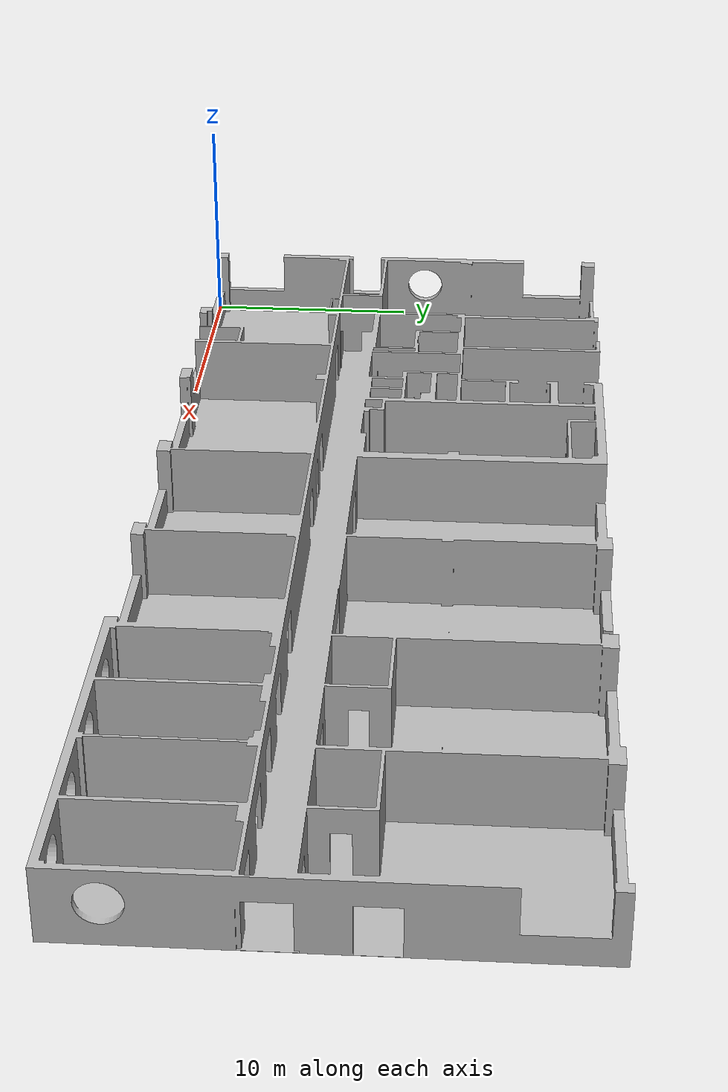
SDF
<?xml version="1.0"?>

<sdf version="1.6">
  <model name='walls'>
    <static>true</static>
    <link name="body">

        <visual name="visual">
          <geometry>
            <mesh><uri>model://models/walls/meshes/no_roof_UAMT.dae</uri></mesh>
          </geometry>
        </visual>

        <collision name="collision">
          <geometry>
            <mesh><uri>model://models/walls/meshes/no_roof_UAMT.dae</uri></mesh>
          </geometry>
        </collision>
 <sensor name='sensor_contact' type='contact'>
                    <contact>
                        <collision>collision</collision>
                    </contact>
                </sensor>

    </link>

    <plugin filename="gz-sim-touchplugin-system"
                    name="gz::sim::systems::TouchPlugin">
                <target>vehicle_blue</target>
                <namespace>wall</namespace>
                <time>0.001</time>
                <enabled>true</enabled>
            </plugin>

  </model>
</sdf>
